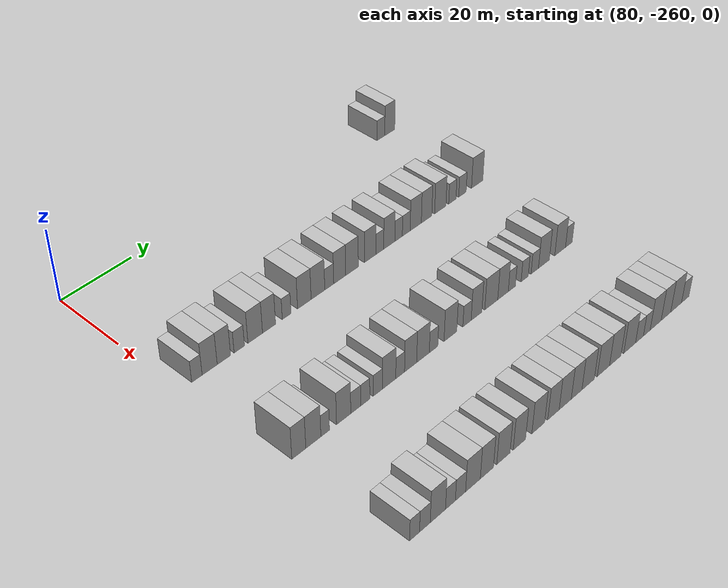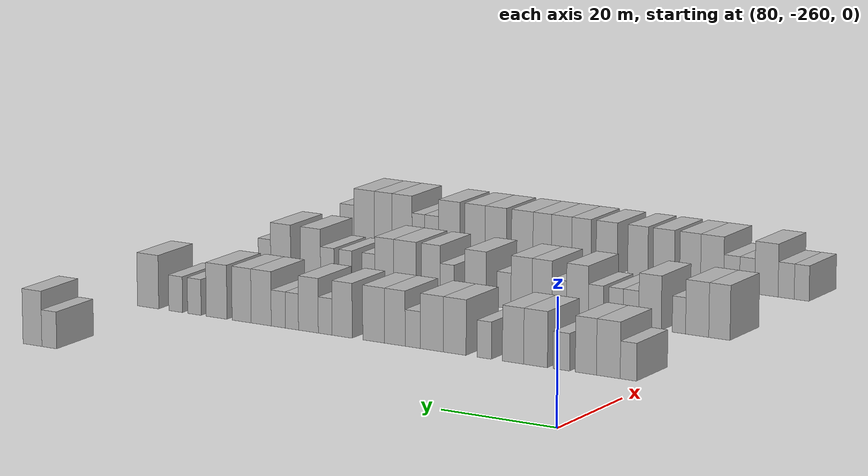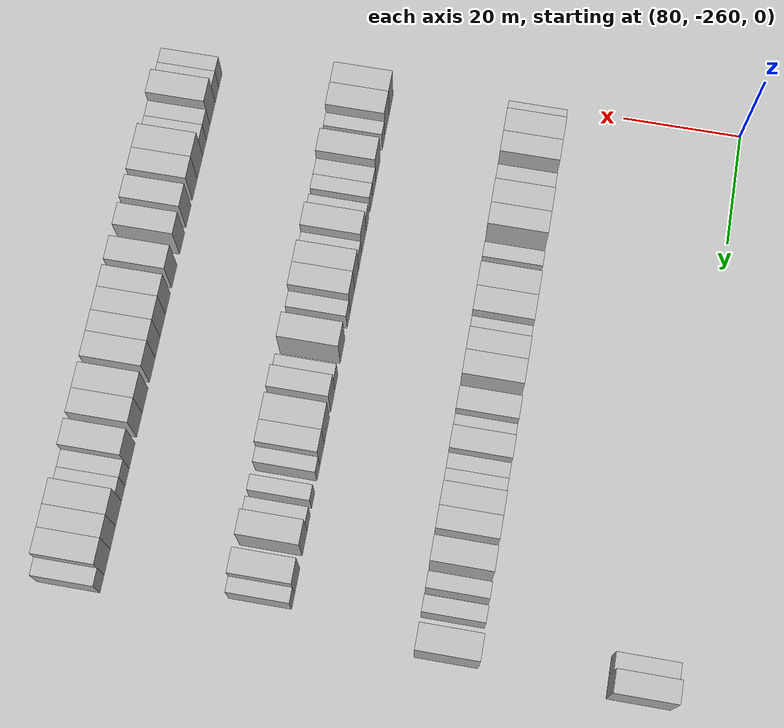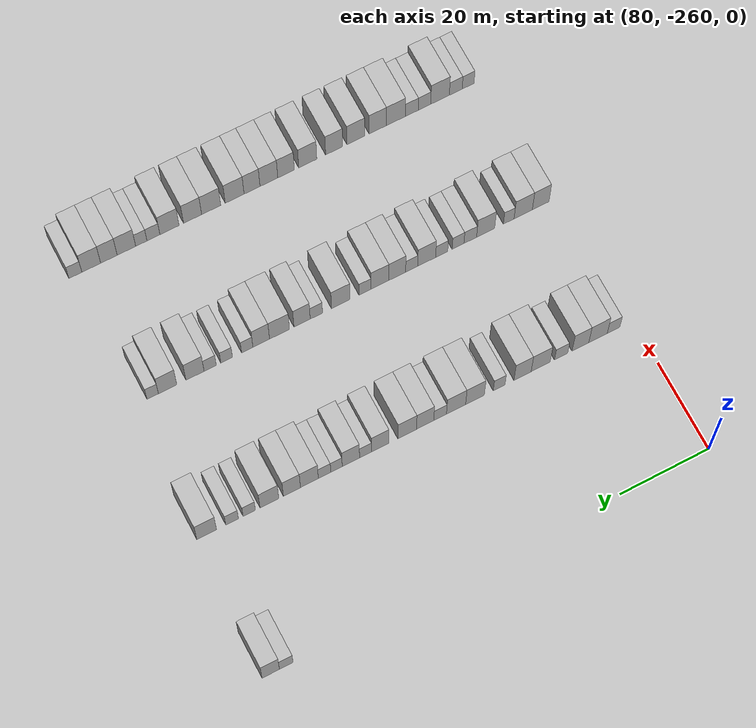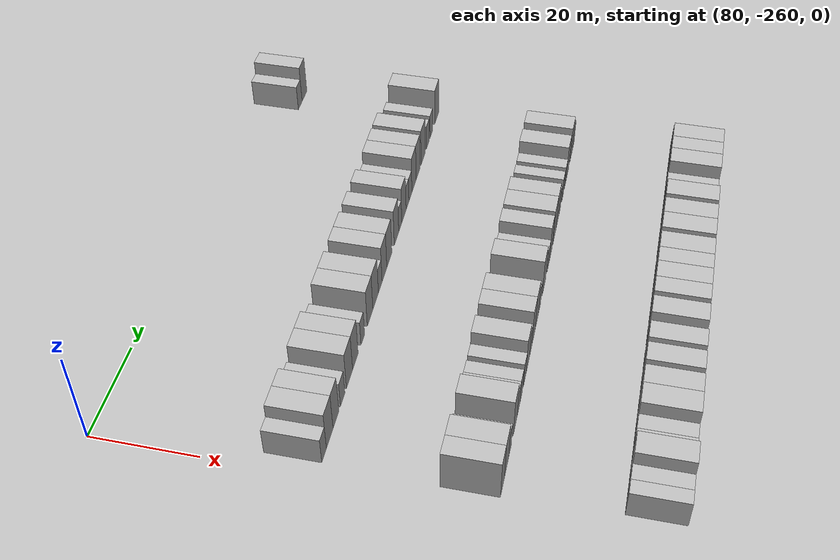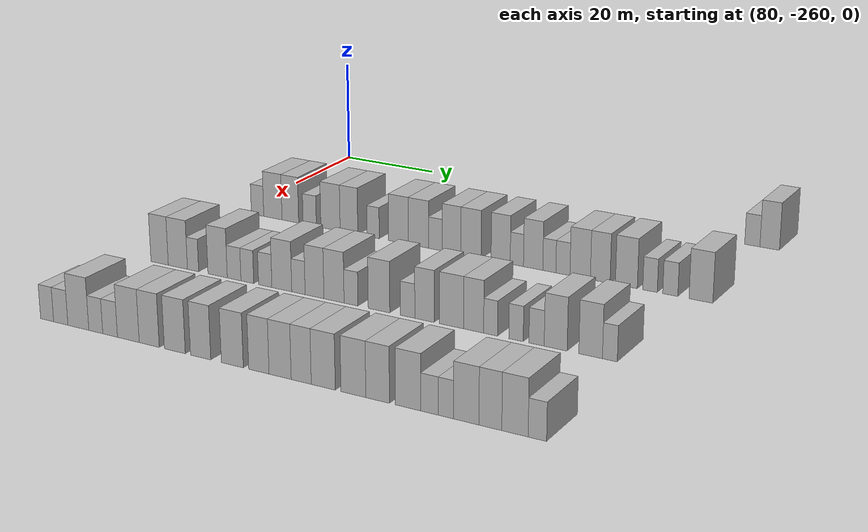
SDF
<sdf version="1.6">
 <world name="default">
  <model name="building_508">
   <static>1</static>
   <pose>85.0000 -167.4077 0 0.000000 0.000000 0.000000</pose>
   <link name="link">
    <pose>0 0 3.00 0 0 0</pose>
    <collision name="collision"><geometry><box><size>10.0000 2.8990 6.0000</size></box></geometry></collision>
    <visual name="visual">
     <cast_shadows>0</cast_shadows>
     <geometry><box><size>10.0000 2.8990 6.0000</size></box></geometry>
     <material>
      <script>
       <uri>model://HANNAS_wall/materials/scripts</uri>
       <uri>model://HANNAS_wall/materials/textures</uri>
       <name>vrc/HANNAS_wall</name>
      </script>
     </material>
    </visual>
   </link>
  </model>
  <model name="building_509">
   <static>1</static>
   <pose>85.0000 -164.1132 0 0.000000 0.000000 0.000000</pose>
   <link name="link">
    <pose>0 0 4.50 0 0 0</pose>
    <collision name="collision"><geometry><box><size>10.0000 3.6900 9.0000</size></box></geometry></collision>
    <visual name="visual">
     <cast_shadows>0</cast_shadows>
     <geometry><box><size>10.0000 3.6900 9.0000</size></box></geometry>
     <material>
      <script>
       <uri>model://HANNAS_wall/materials/scripts</uri>
       <uri>model://HANNAS_wall/materials/textures</uri>
       <name>vrc/HANNAS_wall</name>
      </script>
     </material>
    </visual>
   </link>
  </model>
  <model name="building_720">
   <static>1</static>
   <pose>115.0000 -255.4971 0 0.000000 0.000000 0.000000</pose>
   <link name="link">
    <pose>0 0 3.00 0 0 0</pose>
    <collision name="collision"><geometry><box><size>10.0000 2.8646 6.0000</size></box></geometry></collision>
    <visual name="visual">
     <cast_shadows>0</cast_shadows>
     <geometry><box><size>10.0000 2.8646 6.0000</size></box></geometry>
     <material>
      <script>
       <uri>model://HANNAS_wall/materials/scripts</uri>
       <uri>model://HANNAS_wall/materials/textures</uri>
       <name>vrc/HANNAS_wall</name>
      </script>
     </material>
    </visual>
   </link>
  </model>
  <model name="building_721">
   <static>1</static>
   <pose>115.0000 -251.9720 0 0.000000 0.000000 0.000000</pose>
   <link name="link">
    <pose>0 0 4.50 0 0 0</pose>
    <collision name="collision"><geometry><box><size>10.0000 4.1856 9.0000</size></box></geometry></collision>
    <visual name="visual">
     <cast_shadows>0</cast_shadows>
     <geometry><box><size>10.0000 4.1856 9.0000</size></box></geometry>
     <material>
      <script>
       <uri>model://HANNAS_wall/materials/scripts</uri>
       <uri>model://HANNAS_wall/materials/textures</uri>
       <name>vrc/HANNAS_wall</name>
      </script>
     </material>
    </visual>
   </link>
  </model>
  <model name="building_722">
   <static>1</static>
   <pose>115.0000 -247.9915 0 0.000000 0.000000 0.000000</pose>
   <link name="link">
    <pose>0 0 4.50 0 0 0</pose>
    <collision name="collision"><geometry><box><size>10.0000 3.7753 9.0000</size></box></geometry></collision>
    <visual name="visual">
     <cast_shadows>0</cast_shadows>
     <geometry><box><size>10.0000 3.7753 9.0000</size></box></geometry>
     <material>
      <script>
       <uri>model://HANNAS_wall/materials/scripts</uri>
       <uri>model://HANNAS_wall/materials/textures</uri>
       <name>vrc/HANNAS_wall</name>
      </script>
     </material>
    </visual>
   </link>
  </model>
  <model name="building_723">
   <static>1</static>
   <pose>115.0000 -243.6222 0 0.000000 0.000000 0.000000</pose>
   <link name="link">
    <pose>0 0 3.00 0 0 0</pose>
    <collision name="collision"><geometry><box><size>10.0000 2.9632 6.0000</size></box></geometry></collision>
    <visual name="visual">
     <cast_shadows>0</cast_shadows>
     <geometry><box><size>10.0000 2.9632 6.0000</size></box></geometry>
     <material>
      <script>
       <uri>model://HANNAS_wall/materials/scripts</uri>
       <uri>model://HANNAS_wall/materials/textures</uri>
       <name>vrc/HANNAS_wall</name>
      </script>
     </material>
    </visual>
   </link>
  </model>
  <model name="building_724">
   <static>1</static>
   <pose>115.0000 -239.0097 0 0.000000 0.000000 0.000000</pose>
   <link name="link">
    <pose>0 0 4.50 0 0 0</pose>
    <collision name="collision"><geometry><box><size>10.0000 4.2618 9.0000</size></box></geometry></collision>
    <visual name="visual">
     <cast_shadows>0</cast_shadows>
     <geometry><box><size>10.0000 4.2618 9.0000</size></box></geometry>
     <material>
      <script>
       <uri>model://HANNAS_wall/materials/scripts</uri>
       <uri>model://HANNAS_wall/materials/textures</uri>
       <name>vrc/HANNAS_wall</name>
      </script>
     </material>
    </visual>
   </link>
  </model>
  <model name="building_725">
   <static>1</static>
   <pose>115.0000 -234.9482 0 0.000000 0.000000 0.000000</pose>
   <link name="link">
    <pose>0 0 4.50 0 0 0</pose>
    <collision name="collision"><geometry><box><size>10.0000 3.8612 9.0000</size></box></geometry></collision>
    <visual name="visual">
     <cast_shadows>0</cast_shadows>
     <geometry><box><size>10.0000 3.8612 9.0000</size></box></geometry>
     <material>
      <script>
       <uri>model://HANNAS_wall/materials/scripts</uri>
       <uri>model://HANNAS_wall/materials/textures</uri>
       <name>vrc/HANNAS_wall</name>
      </script>
     </material>
    </visual>
   </link>
  </model>
  <model name="building_726">
   <static>1</static>
   <pose>115.0000 -229.7022 0 0.000000 0.000000 0.000000</pose>
   <link name="link">
    <pose>0 0 3.00 0 0 0</pose>
    <collision name="collision"><geometry><box><size>10.0000 2.6308 6.0000</size></box></geometry></collision>
    <visual name="visual">
     <cast_shadows>0</cast_shadows>
     <geometry><box><size>10.0000 2.6308 6.0000</size></box></geometry>
     <material>
      <script>
       <uri>model://HANNAS_wall/materials/scripts</uri>
       <uri>model://HANNAS_wall/materials/textures</uri>
       <name>vrc/HANNAS_wall</name>
      </script>
     </material>
    </visual>
   </link>
  </model>
  <model name="building_727">
   <static>1</static>
   <pose>115.0000 -224.3018 0 0.000000 0.000000 0.000000</pose>
   <link name="link">
    <pose>0 0 4.50 0 0 0</pose>
    <collision name="collision"><geometry><box><size>10.0000 4.1701 9.0000</size></box></geometry></collision>
    <visual name="visual">
     <cast_shadows>0</cast_shadows>
     <geometry><box><size>10.0000 4.1701 9.0000</size></box></geometry>
     <material>
      <script>
       <uri>model://HANNAS_wall/materials/scripts</uri>
       <uri>model://HANNAS_wall/materials/textures</uri>
       <name>vrc/HANNAS_wall</name>
      </script>
     </material>
    </visual>
   </link>
  </model>
  <model name="building_728">
   <static>1</static>
   <pose>115.0000 -220.0845 0 0.000000 0.000000 0.000000</pose>
   <link name="link">
    <pose>0 0 4.50 0 0 0</pose>
    <collision name="collision"><geometry><box><size>10.0000 4.2645 9.0000</size></box></geometry></collision>
    <visual name="visual">
     <cast_shadows>0</cast_shadows>
     <geometry><box><size>10.0000 4.2645 9.0000</size></box></geometry>
     <material>
      <script>
       <uri>model://HANNAS_wall/materials/scripts</uri>
       <uri>model://HANNAS_wall/materials/textures</uri>
       <name>vrc/HANNAS_wall</name>
      </script>
     </material>
    </visual>
   </link>
  </model>
  <model name="building_729">
   <static>1</static>
   <pose>115.0000 -216.5347 0 0.000000 0.000000 0.000000</pose>
   <link name="link">
    <pose>0 0 3.00 0 0 0</pose>
    <collision name="collision"><geometry><box><size>10.0000 2.8351 6.0000</size></box></geometry></collision>
    <visual name="visual">
     <cast_shadows>0</cast_shadows>
     <geometry><box><size>10.0000 2.8351 6.0000</size></box></geometry>
     <material>
      <script>
       <uri>model://HANNAS_wall/materials/scripts</uri>
       <uri>model://HANNAS_wall/materials/textures</uri>
       <name>vrc/HANNAS_wall</name>
      </script>
     </material>
    </visual>
   </link>
  </model>
  <model name="building_730">
   <static>1</static>
   <pose>115.0000 -213.2038 0 0.000000 0.000000 0.000000</pose>
   <link name="link">
    <pose>0 0 4.50 0 0 0</pose>
    <collision name="collision"><geometry><box><size>10.0000 3.8267 9.0000</size></box></geometry></collision>
    <visual name="visual">
     <cast_shadows>0</cast_shadows>
     <geometry><box><size>10.0000 3.8267 9.0000</size></box></geometry>
     <material>
      <script>
       <uri>model://HANNAS_wall/materials/scripts</uri>
       <uri>model://HANNAS_wall/materials/textures</uri>
       <name>vrc/HANNAS_wall</name>
      </script>
     </material>
    </visual>
   </link>
  </model>
  <model name="building_731">
   <static>1</static>
   <pose>115.0000 -209.2380 0 0.000000 0.000000 0.000000</pose>
   <link name="link">
    <pose>0 0 4.50 0 0 0</pose>
    <collision name="collision"><geometry><box><size>10.0000 4.1050 9.0000</size></box></geometry></collision>
    <visual name="visual">
     <cast_shadows>0</cast_shadows>
     <geometry><box><size>10.0000 4.1050 9.0000</size></box></geometry>
     <material>
      <script>
       <uri>model://HANNAS_wall/materials/scripts</uri>
       <uri>model://HANNAS_wall/materials/textures</uri>
       <name>vrc/HANNAS_wall</name>
      </script>
     </material>
    </visual>
   </link>
  </model>
  <model name="building_732">
   <static>1</static>
   <pose>115.0000 -203.2764 0 0.000000 0.000000 0.000000</pose>
   <link name="link">
    <pose>0 0 4.50 0 0 0</pose>
    <collision name="collision"><geometry><box><size>10.0000 3.8181 9.0000</size></box></geometry></collision>
    <visual name="visual">
     <cast_shadows>0</cast_shadows>
     <geometry><box><size>10.0000 3.8181 9.0000</size></box></geometry>
     <material>
      <script>
       <uri>model://HANNAS_wall/materials/scripts</uri>
       <uri>model://HANNAS_wall/materials/textures</uri>
       <name>vrc/HANNAS_wall</name>
      </script>
     </material>
    </visual>
   </link>
  </model>
  <model name="building_733">
   <static>1</static>
   <pose>115.0000 -200.0589 0 0.000000 0.000000 0.000000</pose>
   <link name="link">
    <pose>0 0 3.00 0 0 0</pose>
    <collision name="collision"><geometry><box><size>10.0000 2.6170 6.0000</size></box></geometry></collision>
    <visual name="visual">
     <cast_shadows>0</cast_shadows>
     <geometry><box><size>10.0000 2.6170 6.0000</size></box></geometry>
     <material>
      <script>
       <uri>model://HANNAS_wall/materials/scripts</uri>
       <uri>model://HANNAS_wall/materials/textures</uri>
       <name>vrc/HANNAS_wall</name>
      </script>
     </material>
    </visual>
   </link>
  </model>
  <model name="building_734">
   <static>1</static>
   <pose>115.0000 -196.8568 0 0.000000 0.000000 0.000000</pose>
   <link name="link">
    <pose>0 0 4.50 0 0 0</pose>
    <collision name="collision"><geometry><box><size>10.0000 3.7873 9.0000</size></box></geometry></collision>
    <visual name="visual">
     <cast_shadows>0</cast_shadows>
     <geometry><box><size>10.0000 3.7873 9.0000</size></box></geometry>
     <material>
      <script>
       <uri>model://HANNAS_wall/materials/scripts</uri>
       <uri>model://HANNAS_wall/materials/textures</uri>
       <name>vrc/HANNAS_wall</name>
      </script>
     </material>
    </visual>
   </link>
  </model>
  <model name="building_735">
   <static>1</static>
   <pose>115.0000 -193.7016 0 0.000000 0.000000 0.000000</pose>
   <link name="link">
    <pose>0 0 3.00 0 0 0</pose>
    <collision name="collision"><geometry><box><size>10.0000 2.5230 6.0000</size></box></geometry></collision>
    <visual name="visual">
     <cast_shadows>0</cast_shadows>
     <geometry><box><size>10.0000 2.5230 6.0000</size></box></geometry>
     <material>
      <script>
       <uri>model://HANNAS_wall/materials/scripts</uri>
       <uri>model://HANNAS_wall/materials/textures</uri>
       <name>vrc/HANNAS_wall</name>
      </script>
     </material>
    </visual>
   </link>
  </model>
  <model name="building_736">
   <static>1</static>
   <pose>115.0000 -191.0798 0 0.000000 0.000000 0.000000</pose>
   <link name="link">
    <pose>0 0 3.00 0 0 0</pose>
    <collision name="collision"><geometry><box><size>10.0000 2.7205 6.0000</size></box></geometry></collision>
    <visual name="visual">
     <cast_shadows>0</cast_shadows>
     <geometry><box><size>10.0000 2.7205 6.0000</size></box></geometry>
     <material>
      <script>
       <uri>model://HANNAS_wall/materials/scripts</uri>
       <uri>model://HANNAS_wall/materials/textures</uri>
       <name>vrc/HANNAS_wall</name>
      </script>
     </material>
    </visual>
   </link>
  </model>
  <model name="building_737">
   <static>1</static>
   <pose>115.0000 -187.7755 0 0.000000 0.000000 0.000000</pose>
   <link name="link">
    <pose>0 0 4.50 0 0 0</pose>
    <collision name="collision"><geometry><box><size>10.0000 3.8881 9.0000</size></box></geometry></collision>
    <visual name="visual">
     <cast_shadows>0</cast_shadows>
     <geometry><box><size>10.0000 3.8881 9.0000</size></box></geometry>
     <material>
      <script>
       <uri>model://HANNAS_wall/materials/scripts</uri>
       <uri>model://HANNAS_wall/materials/textures</uri>
       <name>vrc/HANNAS_wall</name>
      </script>
     </material>
    </visual>
   </link>
  </model>
  <model name="building_738">
   <static>1</static>
   <pose>115.0000 -183.9762 0 0.000000 0.000000 0.000000</pose>
   <link name="link">
    <pose>0 0 4.50 0 0 0</pose>
    <collision name="collision"><geometry><box><size>10.0000 3.7105 9.0000</size></box></geometry></collision>
    <visual name="visual">
     <cast_shadows>0</cast_shadows>
     <geometry><box><size>10.0000 3.7105 9.0000</size></box></geometry>
     <material>
      <script>
       <uri>model://HANNAS_wall/materials/scripts</uri>
       <uri>model://HANNAS_wall/materials/textures</uri>
       <name>vrc/HANNAS_wall</name>
      </script>
     </material>
    </visual>
   </link>
  </model>
  <model name="building_739">
   <static>1</static>
   <pose>115.0000 -179.0841 0 0.000000 0.000000 0.000000</pose>
   <link name="link">
    <pose>0 0 4.50 0 0 0</pose>
    <collision name="collision"><geometry><box><size>10.0000 4.0737 9.0000</size></box></geometry></collision>
    <visual name="visual">
     <cast_shadows>0</cast_shadows>
     <geometry><box><size>10.0000 4.0737 9.0000</size></box></geometry>
     <material>
      <script>
       <uri>model://HANNAS_wall/materials/scripts</uri>
       <uri>model://HANNAS_wall/materials/textures</uri>
       <name>vrc/HANNAS_wall</name>
      </script>
     </material>
    </visual>
   </link>
  </model>
  <model name="building_740">
   <static>1</static>
   <pose>115.0000 -174.7166 0 0.000000 0.000000 0.000000</pose>
   <link name="link">
    <pose>0 0 3.00 0 0 0</pose>
    <collision name="collision"><geometry><box><size>10.0000 2.6613 6.0000</size></box></geometry></collision>
    <visual name="visual">
     <cast_shadows>0</cast_shadows>
     <geometry><box><size>10.0000 2.6613 6.0000</size></box></geometry>
     <material>
      <script>
       <uri>model://HANNAS_wall/materials/scripts</uri>
       <uri>model://HANNAS_wall/materials/textures</uri>
       <name>vrc/HANNAS_wall</name>
      </script>
     </material>
    </visual>
   </link>
  </model>
  <model name="building_741">
   <static>1</static>
   <pose>115.0000 -171.0185 0 0.000000 0.000000 0.000000</pose>
   <link name="link">
    <pose>0 0 3.00 0 0 0</pose>
    <collision name="collision"><geometry><box><size>10.0000 2.7350 6.0000</size></box></geometry></collision>
    <visual name="visual">
     <cast_shadows>0</cast_shadows>
     <geometry><box><size>10.0000 2.7350 6.0000</size></box></geometry>
     <material>
      <script>
       <uri>model://HANNAS_wall/materials/scripts</uri>
       <uri>model://HANNAS_wall/materials/textures</uri>
       <name>vrc/HANNAS_wall</name>
      </script>
     </material>
    </visual>
   </link>
  </model>
  <model name="building_742">
   <static>1</static>
   <pose>115.0000 -165.5283 0 0.000000 0.000000 0.000000</pose>
   <link name="link">
    <pose>0 0 4.50 0 0 0</pose>
    <collision name="collision"><geometry><box><size>10.0000 4.2454 9.0000</size></box></geometry></collision>
    <visual name="visual">
     <cast_shadows>0</cast_shadows>
     <geometry><box><size>10.0000 4.2454 9.0000</size></box></geometry>
     <material>
      <script>
       <uri>model://HANNAS_wall/materials/scripts</uri>
       <uri>model://HANNAS_wall/materials/textures</uri>
       <name>vrc/HANNAS_wall</name>
      </script>
     </material>
    </visual>
   </link>
  </model>
  <model name="building_952">
   <static>1</static>
   <pose>145.0000 -255.5595 0 0.000000 0.000000 0.000000</pose>
   <link name="link">
    <pose>0 0 4.50 0 0 0</pose>
    <collision name="collision"><geometry><box><size>10.0000 3.8281 9.0000</size></box></geometry></collision>
    <visual name="visual">
     <cast_shadows>0</cast_shadows>
     <geometry><box><size>10.0000 3.8281 9.0000</size></box></geometry>
     <material>
      <script>
       <uri>model://HANNAS_wall/materials/scripts</uri>
       <uri>model://HANNAS_wall/materials/textures</uri>
       <name>vrc/HANNAS_wall</name>
      </script>
     </material>
    </visual>
   </link>
  </model>
  <model name="building_953">
   <static>1</static>
   <pose>145.0000 -251.5463 0 0.000000 0.000000 0.000000</pose>
   <link name="link">
    <pose>0 0 4.50 0 0 0</pose>
    <collision name="collision"><geometry><box><size>10.0000 4.1982 9.0000</size></box></geometry></collision>
    <visual name="visual">
     <cast_shadows>0</cast_shadows>
     <geometry><box><size>10.0000 4.1982 9.0000</size></box></geometry>
     <material>
      <script>
       <uri>model://HANNAS_wall/materials/scripts</uri>
       <uri>model://HANNAS_wall/materials/textures</uri>
       <name>vrc/HANNAS_wall</name>
      </script>
     </material>
    </visual>
   </link>
  </model>
  <model name="building_954">
   <static>1</static>
   <pose>145.0000 -248.2325 0 0.000000 0.000000 0.000000</pose>
   <link name="link">
    <pose>0 0 3.00 0 0 0</pose>
    <collision name="collision"><geometry><box><size>10.0000 2.4294 6.0000</size></box></geometry></collision>
    <visual name="visual">
     <cast_shadows>0</cast_shadows>
     <geometry><box><size>10.0000 2.4294 6.0000</size></box></geometry>
     <material>
      <script>
       <uri>model://HANNAS_wall/materials/scripts</uri>
       <uri>model://HANNAS_wall/materials/textures</uri>
       <name>vrc/HANNAS_wall</name>
      </script>
     </material>
    </visual>
   </link>
  </model>
  <model name="building_955">
   <static>1</static>
   <pose>145.0000 -242.9594 0 0.000000 0.000000 0.000000</pose>
   <link name="link">
    <pose>0 0 4.50 0 0 0</pose>
    <collision name="collision"><geometry><box><size>10.0000 4.1167 9.0000</size></box></geometry></collision>
    <visual name="visual">
     <cast_shadows>0</cast_shadows>
     <geometry><box><size>10.0000 4.1167 9.0000</size></box></geometry>
     <material>
      <script>
       <uri>model://HANNAS_wall/materials/scripts</uri>
       <uri>model://HANNAS_wall/materials/textures</uri>
       <name>vrc/HANNAS_wall</name>
      </script>
     </material>
    </visual>
   </link>
  </model>
  <model name="building_956">
   <static>1</static>
   <pose>145.0000 -239.4608 0 0.000000 0.000000 0.000000</pose>
   <link name="link">
    <pose>0 0 3.00 0 0 0</pose>
    <collision name="collision"><geometry><box><size>10.0000 2.8805 6.0000</size></box></geometry></collision>
    <visual name="visual">
     <cast_shadows>0</cast_shadows>
     <geometry><box><size>10.0000 2.8805 6.0000</size></box></geometry>
     <material>
      <script>
       <uri>model://HANNAS_wall/materials/scripts</uri>
       <uri>model://HANNAS_wall/materials/textures</uri>
       <name>vrc/HANNAS_wall</name>
      </script>
     </material>
    </visual>
   </link>
  </model>
  <model name="building_957">
   <static>1</static>
   <pose>145.0000 -236.6794 0 0.000000 0.000000 0.000000</pose>
   <link name="link">
    <pose>0 0 3.00 0 0 0</pose>
    <collision name="collision"><geometry><box><size>10.0000 2.6824 6.0000</size></box></geometry></collision>
    <visual name="visual">
     <cast_shadows>0</cast_shadows>
     <geometry><box><size>10.0000 2.6824 6.0000</size></box></geometry>
     <material>
      <script>
       <uri>model://HANNAS_wall/materials/scripts</uri>
       <uri>model://HANNAS_wall/materials/textures</uri>
       <name>vrc/HANNAS_wall</name>
      </script>
     </material>
    </visual>
   </link>
  </model>
  <model name="building_958">
   <static>1</static>
   <pose>145.0000 -232.9587 0 0.000000 0.000000 0.000000</pose>
   <link name="link">
    <pose>0 0 3.00 0 0 0</pose>
    <collision name="collision"><geometry><box><size>10.0000 2.7591 6.0000</size></box></geometry></collision>
    <visual name="visual">
     <cast_shadows>0</cast_shadows>
     <geometry><box><size>10.0000 2.7591 6.0000</size></box></geometry>
     <material>
      <script>
       <uri>model://HANNAS_wall/materials/scripts</uri>
       <uri>model://HANNAS_wall/materials/textures</uri>
       <name>vrc/HANNAS_wall</name>
      </script>
     </material>
    </visual>
   </link>
  </model>
  <model name="building_959">
   <static>1</static>
   <pose>145.0000 -229.5435 0 0.000000 0.000000 0.000000</pose>
   <link name="link">
    <pose>0 0 4.50 0 0 0</pose>
    <collision name="collision"><geometry><box><size>10.0000 4.0712 9.0000</size></box></geometry></collision>
    <visual name="visual">
     <cast_shadows>0</cast_shadows>
     <geometry><box><size>10.0000 4.0712 9.0000</size></box></geometry>
     <material>
      <script>
       <uri>model://HANNAS_wall/materials/scripts</uri>
       <uri>model://HANNAS_wall/materials/textures</uri>
       <name>vrc/HANNAS_wall</name>
      </script>
     </material>
    </visual>
   </link>
  </model>
  <model name="building_960">
   <static>1</static>
   <pose>145.0000 -226.1524 0 0.000000 0.000000 0.000000</pose>
   <link name="link">
    <pose>0 0 3.00 0 0 0</pose>
    <collision name="collision"><geometry><box><size>10.0000 2.7109 6.0000</size></box></geometry></collision>
    <visual name="visual">
     <cast_shadows>0</cast_shadows>
     <geometry><box><size>10.0000 2.7109 6.0000</size></box></geometry>
     <material>
      <script>
       <uri>model://HANNAS_wall/materials/scripts</uri>
       <uri>model://HANNAS_wall/materials/textures</uri>
       <name>vrc/HANNAS_wall</name>
      </script>
     </material>
    </visual>
   </link>
  </model>
  <model name="building_961">
   <static>1</static>
   <pose>145.0000 -222.9111 0 0.000000 0.000000 0.000000</pose>
   <link name="link">
    <pose>0 0 4.50 0 0 0</pose>
    <collision name="collision"><geometry><box><size>10.0000 3.7718 9.0000</size></box></geometry></collision>
    <visual name="visual">
     <cast_shadows>0</cast_shadows>
     <geometry><box><size>10.0000 3.7718 9.0000</size></box></geometry>
     <material>
      <script>
       <uri>model://HANNAS_wall/materials/scripts</uri>
       <uri>model://HANNAS_wall/materials/textures</uri>
       <name>vrc/HANNAS_wall</name>
      </script>
     </material>
    </visual>
   </link>
  </model>
  <model name="building_962">
   <static>1</static>
   <pose>145.0000 -219.0310 0 0.000000 0.000000 0.000000</pose>
   <link name="link">
    <pose>0 0 4.50 0 0 0</pose>
    <collision name="collision"><geometry><box><size>10.0000 3.9883 9.0000</size></box></geometry></collision>
    <visual name="visual">
     <cast_shadows>0</cast_shadows>
     <geometry><box><size>10.0000 3.9883 9.0000</size></box></geometry>
     <material>
      <script>
       <uri>model://HANNAS_wall/materials/scripts</uri>
       <uri>model://HANNAS_wall/materials/textures</uri>
       <name>vrc/HANNAS_wall</name>
      </script>
     </material>
    </visual>
   </link>
  </model>
  <model name="building_963">
   <static>1</static>
   <pose>145.0000 -215.6750 0 0.000000 0.000000 0.000000</pose>
   <link name="link">
    <pose>0 0 3.00 0 0 0</pose>
    <collision name="collision"><geometry><box><size>10.0000 2.7237 6.0000</size></box></geometry></collision>
    <visual name="visual">
     <cast_shadows>0</cast_shadows>
     <geometry><box><size>10.0000 2.7237 6.0000</size></box></geometry>
     <material>
      <script>
       <uri>model://HANNAS_wall/materials/scripts</uri>
       <uri>model://HANNAS_wall/materials/textures</uri>
       <name>vrc/HANNAS_wall</name>
      </script>
     </material>
    </visual>
   </link>
  </model>
  <model name="building_964">
   <static>1</static>
   <pose>145.0000 -210.2338 0 0.000000 0.000000 0.000000</pose>
   <link name="link">
    <pose>0 0 4.50 0 0 0</pose>
    <collision name="collision"><geometry><box><size>10.0000 4.1587 9.0000</size></box></geometry></collision>
    <visual name="visual">
     <cast_shadows>0</cast_shadows>
     <geometry><box><size>10.0000 4.1587 9.0000</size></box></geometry>
     <material>
      <script>
       <uri>model://HANNAS_wall/materials/scripts</uri>
       <uri>model://HANNAS_wall/materials/textures</uri>
       <name>vrc/HANNAS_wall</name>
      </script>
     </material>
    </visual>
   </link>
  </model>
  <model name="building_965">
   <static>1</static>
   <pose>145.0000 -204.7762 0 0.000000 0.000000 0.000000</pose>
   <link name="link">
    <pose>0 0 3.00 0 0 0</pose>
    <collision name="collision"><geometry><box><size>10.0000 2.7564 6.0000</size></box></geometry></collision>
    <visual name="visual">
     <cast_shadows>0</cast_shadows>
     <geometry><box><size>10.0000 2.7564 6.0000</size></box></geometry>
     <material>
      <script>
       <uri>model://HANNAS_wall/materials/scripts</uri>
       <uri>model://HANNAS_wall/materials/textures</uri>
       <name>vrc/HANNAS_wall</name>
      </script>
     </material>
    </visual>
   </link>
  </model>
  <model name="building_966">
   <static>1</static>
   <pose>145.0000 -201.5920 0 0.000000 0.000000 0.000000</pose>
   <link name="link">
    <pose>0 0 4.50 0 0 0</pose>
    <collision name="collision"><geometry><box><size>10.0000 3.6120 9.0000</size></box></geometry></collision>
    <visual name="visual">
     <cast_shadows>0</cast_shadows>
     <geometry><box><size>10.0000 3.6120 9.0000</size></box></geometry>
     <material>
      <script>
       <uri>model://HANNAS_wall/materials/scripts</uri>
       <uri>model://HANNAS_wall/materials/textures</uri>
       <name>vrc/HANNAS_wall</name>
      </script>
     </material>
    </visual>
   </link>
  </model>
  <model name="building_967">
   <static>1</static>
   <pose>145.0000 -196.5698 0 0.000000 0.000000 0.000000</pose>
   <link name="link">
    <pose>0 0 4.50 0 0 0</pose>
    <collision name="collision"><geometry><box><size>10.0000 4.4324 9.0000</size></box></geometry></collision>
    <visual name="visual">
     <cast_shadows>0</cast_shadows>
     <geometry><box><size>10.0000 4.4324 9.0000</size></box></geometry>
     <material>
      <script>
       <uri>model://HANNAS_wall/materials/scripts</uri>
       <uri>model://HANNAS_wall/materials/textures</uri>
       <name>vrc/HANNAS_wall</name>
      </script>
     </material>
    </visual>
   </link>
  </model>
  <model name="building_968">
   <static>1</static>
   <pose>145.0000 -192.5190 0 0.000000 0.000000 0.000000</pose>
   <link name="link">
    <pose>0 0 4.50 0 0 0</pose>
    <collision name="collision"><geometry><box><size>10.0000 3.6693 9.0000</size></box></geometry></collision>
    <visual name="visual">
     <cast_shadows>0</cast_shadows>
     <geometry><box><size>10.0000 3.6693 9.0000</size></box></geometry>
     <material>
      <script>
       <uri>model://HANNAS_wall/materials/scripts</uri>
       <uri>model://HANNAS_wall/materials/textures</uri>
       <name>vrc/HANNAS_wall</name>
      </script>
     </material>
    </visual>
   </link>
  </model>
  <model name="building_969">
   <static>1</static>
   <pose>145.0000 -189.4252 0 0.000000 0.000000 0.000000</pose>
   <link name="link">
    <pose>0 0 3.00 0 0 0</pose>
    <collision name="collision"><geometry><box><size>10.0000 2.5182 6.0000</size></box></geometry></collision>
    <visual name="visual">
     <cast_shadows>0</cast_shadows>
     <geometry><box><size>10.0000 2.5182 6.0000</size></box></geometry>
     <material>
      <script>
       <uri>model://HANNAS_wall/materials/scripts</uri>
       <uri>model://HANNAS_wall/materials/textures</uri>
       <name>vrc/HANNAS_wall</name>
      </script>
     </material>
    </visual>
   </link>
  </model>
  <model name="building_970">
   <static>1</static>
   <pose>145.0000 -184.8795 0 0.000000 0.000000 0.000000</pose>
   <link name="link">
    <pose>0 0 3.00 0 0 0</pose>
    <collision name="collision"><geometry><box><size>10.0000 2.5732 6.0000</size></box></geometry></collision>
    <visual name="visual">
     <cast_shadows>0</cast_shadows>
     <geometry><box><size>10.0000 2.5732 6.0000</size></box></geometry>
     <material>
      <script>
       <uri>model://HANNAS_wall/materials/scripts</uri>
       <uri>model://HANNAS_wall/materials/textures</uri>
       <name>vrc/HANNAS_wall</name>
      </script>
     </material>
    </visual>
   </link>
  </model>
  <model name="building_971">
   <static>1</static>
   <pose>145.0000 -181.2519 0 0.000000 0.000000 0.000000</pose>
   <link name="link">
    <pose>0 0 3.00 0 0 0</pose>
    <collision name="collision"><geometry><box><size>10.0000 2.6819 6.0000</size></box></geometry></collision>
    <visual name="visual">
     <cast_shadows>0</cast_shadows>
     <geometry><box><size>10.0000 2.6819 6.0000</size></box></geometry>
     <material>
      <script>
       <uri>model://HANNAS_wall/materials/scripts</uri>
       <uri>model://HANNAS_wall/materials/textures</uri>
       <name>vrc/HANNAS_wall</name>
      </script>
     </material>
    </visual>
   </link>
  </model>
  <model name="building_972">
   <static>1</static>
   <pose>145.0000 -177.9156 0 0.000000 0.000000 0.000000</pose>
   <link name="link">
    <pose>0 0 4.50 0 0 0</pose>
    <collision name="collision"><geometry><box><size>10.0000 3.9908 9.0000</size></box></geometry></collision>
    <visual name="visual">
     <cast_shadows>0</cast_shadows>
     <geometry><box><size>10.0000 3.9908 9.0000</size></box></geometry>
     <material>
      <script>
       <uri>model://HANNAS_wall/materials/scripts</uri>
       <uri>model://HANNAS_wall/materials/textures</uri>
       <name>vrc/HANNAS_wall</name>
      </script>
     </material>
    </visual>
   </link>
  </model>
  <model name="building_973">
   <static>1</static>
   <pose>145.0000 -171.9094 0 0.000000 0.000000 0.000000</pose>
   <link name="link">
    <pose>0 0 4.50 0 0 0</pose>
    <collision name="collision"><geometry><box><size>10.0000 4.0217 9.0000</size></box></geometry></collision>
    <visual name="visual">
     <cast_shadows>0</cast_shadows>
     <geometry><box><size>10.0000 4.0217 9.0000</size></box></geometry>
     <material>
      <script>
       <uri>model://HANNAS_wall/materials/scripts</uri>
       <uri>model://HANNAS_wall/materials/textures</uri>
       <name>vrc/HANNAS_wall</name>
      </script>
     </material>
    </visual>
   </link>
  </model>
  <model name="building_974">
   <static>1</static>
   <pose>145.0000 -168.6464 0 0.000000 0.000000 0.000000</pose>
   <link name="link">
    <pose>0 0 3.00 0 0 0</pose>
    <collision name="collision"><geometry><box><size>10.0000 2.5042 6.0000</size></box></geometry></collision>
    <visual name="visual">
     <cast_shadows>0</cast_shadows>
     <geometry><box><size>10.0000 2.5042 6.0000</size></box></geometry>
     <material>
      <script>
       <uri>model://HANNAS_wall/materials/scripts</uri>
       <uri>model://HANNAS_wall/materials/textures</uri>
       <name>vrc/HANNAS_wall</name>
      </script>
     </material>
    </visual>
   </link>
  </model>
  <model name="building_1179">
   <static>1</static>
   <pose>175.0000 -255.1610 0 0.000000 0.000000 0.000000</pose>
   <link name="link">
    <pose>0 0 3.00 0 0 0</pose>
    <collision name="collision"><geometry><box><size>10.0000 2.7477 6.0000</size></box></geometry></collision>
    <visual name="visual">
     <cast_shadows>0</cast_shadows>
     <geometry><box><size>10.0000 2.7477 6.0000</size></box></geometry>
     <material>
      <script>
       <uri>model://HANNAS_wall/materials/scripts</uri>
       <uri>model://HANNAS_wall/materials/textures</uri>
       <name>vrc/HANNAS_wall</name>
      </script>
     </material>
    </visual>
   </link>
  </model>
  <model name="building_1180">
   <static>1</static>
   <pose>175.0000 -252.2917 0 0.000000 0.000000 0.000000</pose>
   <link name="link">
    <pose>0 0 3.00 0 0 0</pose>
    <collision name="collision"><geometry><box><size>10.0000 2.9908 6.0000</size></box></geometry></collision>
    <visual name="visual">
     <cast_shadows>0</cast_shadows>
     <geometry><box><size>10.0000 2.9908 6.0000</size></box></geometry>
     <material>
      <script>
       <uri>model://HANNAS_wall/materials/scripts</uri>
       <uri>model://HANNAS_wall/materials/textures</uri>
       <name>vrc/HANNAS_wall</name>
      </script>
     </material>
    </visual>
   </link>
  </model>
  <model name="building_1181">
   <static>1</static>
   <pose>175.0000 -248.6305 0 0.000000 0.000000 0.000000</pose>
   <link name="link">
    <pose>0 0 4.50 0 0 0</pose>
    <collision name="collision"><geometry><box><size>10.0000 4.3317 9.0000</size></box></geometry></collision>
    <visual name="visual">
     <cast_shadows>0</cast_shadows>
     <geometry><box><size>10.0000 4.3317 9.0000</size></box></geometry>
     <material>
      <script>
       <uri>model://HANNAS_wall/materials/scripts</uri>
       <uri>model://HANNAS_wall/materials/textures</uri>
       <name>vrc/HANNAS_wall</name>
      </script>
     </material>
    </visual>
   </link>
  </model>
  <model name="building_1182">
   <static>1</static>
   <pose>175.0000 -245.0396 0 0.000000 0.000000 0.000000</pose>
   <link name="link">
    <pose>0 0 3.00 0 0 0</pose>
    <collision name="collision"><geometry><box><size>10.0000 2.8501 6.0000</size></box></geometry></collision>
    <visual name="visual">
     <cast_shadows>0</cast_shadows>
     <geometry><box><size>10.0000 2.8501 6.0000</size></box></geometry>
     <material>
      <script>
       <uri>model://HANNAS_wall/materials/scripts</uri>
       <uri>model://HANNAS_wall/materials/textures</uri>
       <name>vrc/HANNAS_wall</name>
      </script>
     </material>
    </visual>
   </link>
  </model>
  <model name="building_1183">
   <static>1</static>
   <pose>175.0000 -242.1235 0 0.000000 0.000000 0.000000</pose>
   <link name="link">
    <pose>0 0 3.00 0 0 0</pose>
    <collision name="collision"><geometry><box><size>10.0000 2.9819 6.0000</size></box></geometry></collision>
    <visual name="visual">
     <cast_shadows>0</cast_shadows>
     <geometry><box><size>10.0000 2.9819 6.0000</size></box></geometry>
     <material>
      <script>
       <uri>model://HANNAS_wall/materials/scripts</uri>
       <uri>model://HANNAS_wall/materials/textures</uri>
       <name>vrc/HANNAS_wall</name>
      </script>
     </material>
    </visual>
   </link>
  </model>
  <model name="building_1184">
   <static>1</static>
   <pose>175.0000 -238.4495 0 0.000000 0.000000 0.000000</pose>
   <link name="link">
    <pose>0 0 4.50 0 0 0</pose>
    <collision name="collision"><geometry><box><size>10.0000 4.3663 9.0000</size></box></geometry></collision>
    <visual name="visual">
     <cast_shadows>0</cast_shadows>
     <geometry><box><size>10.0000 4.3663 9.0000</size></box></geometry>
     <material>
      <script>
       <uri>model://HANNAS_wall/materials/scripts</uri>
       <uri>model://HANNAS_wall/materials/textures</uri>
       <name>vrc/HANNAS_wall</name>
      </script>
     </material>
    </visual>
   </link>
  </model>
  <model name="building_1185">
   <static>1</static>
   <pose>175.0000 -234.2865 0 0.000000 0.000000 0.000000</pose>
   <link name="link">
    <pose>0 0 4.50 0 0 0</pose>
    <collision name="collision"><geometry><box><size>10.0000 3.9597 9.0000</size></box></geometry></collision>
    <visual name="visual">
     <cast_shadows>0</cast_shadows>
     <geometry><box><size>10.0000 3.9597 9.0000</size></box></geometry>
     <material>
      <script>
       <uri>model://HANNAS_wall/materials/scripts</uri>
       <uri>model://HANNAS_wall/materials/textures</uri>
       <name>vrc/HANNAS_wall</name>
      </script>
     </material>
    </visual>
   </link>
  </model>
  <model name="building_1186">
   <static>1</static>
   <pose>175.0000 -229.2683 0 0.000000 0.000000 0.000000</pose>
   <link name="link">
    <pose>0 0 4.50 0 0 0</pose>
    <collision name="collision"><geometry><box><size>10.0000 4.0765 9.0000</size></box></geometry></collision>
    <visual name="visual">
     <cast_shadows>0</cast_shadows>
     <geometry><box><size>10.0000 4.0765 9.0000</size></box></geometry>
     <material>
      <script>
       <uri>model://HANNAS_wall/materials/scripts</uri>
       <uri>model://HANNAS_wall/materials/textures</uri>
       <name>vrc/HANNAS_wall</name>
      </script>
     </material>
    </visual>
   </link>
  </model>
  <model name="building_1187">
   <static>1</static>
   <pose>175.0000 -224.2890 0 0.000000 0.000000 0.000000</pose>
   <link name="link">
    <pose>0 0 4.50 0 0 0</pose>
    <collision name="collision"><geometry><box><size>10.0000 3.8820 9.0000</size></box></geometry></collision>
    <visual name="visual">
     <cast_shadows>0</cast_shadows>
     <geometry><box><size>10.0000 3.8820 9.0000</size></box></geometry>
     <material>
      <script>
       <uri>model://HANNAS_wall/materials/scripts</uri>
       <uri>model://HANNAS_wall/materials/textures</uri>
       <name>vrc/HANNAS_wall</name>
      </script>
     </material>
    </visual>
   </link>
  </model>
  <model name="building_1188">
   <static>1</static>
   <pose>175.0000 -218.2907 0 0.000000 0.000000 0.000000</pose>
   <link name="link">
    <pose>0 0 4.50 0 0 0</pose>
    <collision name="collision"><geometry><box><size>10.0000 4.1146 9.0000</size></box></geometry></collision>
    <visual name="visual">
     <cast_shadows>0</cast_shadows>
     <geometry><box><size>10.0000 4.1146 9.0000</size></box></geometry>
     <material>
      <script>
       <uri>model://HANNAS_wall/materials/scripts</uri>
       <uri>model://HANNAS_wall/materials/textures</uri>
       <name>vrc/HANNAS_wall</name>
      </script>
     </material>
    </visual>
   </link>
  </model>
  <model name="building_1189">
   <static>1</static>
   <pose>175.0000 -213.3574 0 0.000000 0.000000 0.000000</pose>
   <link name="link">
    <pose>0 0 4.50 0 0 0</pose>
    <collision name="collision"><geometry><box><size>10.0000 3.7521 9.0000</size></box></geometry></collision>
    <visual name="visual">
     <cast_shadows>0</cast_shadows>
     <geometry><box><size>10.0000 3.7521 9.0000</size></box></geometry>
     <material>
      <script>
       <uri>model://HANNAS_wall/materials/scripts</uri>
       <uri>model://HANNAS_wall/materials/textures</uri>
       <name>vrc/HANNAS_wall</name>
      </script>
     </material>
    </visual>
   </link>
  </model>
  <model name="building_1190">
   <static>1</static>
   <pose>175.0000 -209.4694 0 0.000000 0.000000 0.000000</pose>
   <link name="link">
    <pose>0 0 4.50 0 0 0</pose>
    <collision name="collision"><geometry><box><size>10.0000 4.0237 9.0000</size></box></geometry></collision>
    <visual name="visual">
     <cast_shadows>0</cast_shadows>
     <geometry><box><size>10.0000 4.0237 9.0000</size></box></geometry>
     <material>
      <script>
       <uri>model://HANNAS_wall/materials/scripts</uri>
       <uri>model://HANNAS_wall/materials/textures</uri>
       <name>vrc/HANNAS_wall</name>
      </script>
     </material>
    </visual>
   </link>
  </model>
  <model name="building_1191">
   <static>1</static>
   <pose>175.0000 -205.6572 0 0.000000 0.000000 0.000000</pose>
   <link name="link">
    <pose>0 0 4.50 0 0 0</pose>
    <collision name="collision"><geometry><box><size>10.0000 3.6006 9.0000</size></box></geometry></collision>
    <visual name="visual">
     <cast_shadows>0</cast_shadows>
     <geometry><box><size>10.0000 3.6006 9.0000</size></box></geometry>
     <material>
      <script>
       <uri>model://HANNAS_wall/materials/scripts</uri>
       <uri>model://HANNAS_wall/materials/textures</uri>
       <name>vrc/HANNAS_wall</name>
      </script>
     </material>
    </visual>
   </link>
  </model>
  <model name="building_1192">
   <static>1</static>
   <pose>175.0000 -201.7318 0 0.000000 0.000000 0.000000</pose>
   <link name="link">
    <pose>0 0 4.50 0 0 0</pose>
    <collision name="collision"><geometry><box><size>10.0000 4.2502 9.0000</size></box></geometry></collision>
    <visual name="visual">
     <cast_shadows>0</cast_shadows>
     <geometry><box><size>10.0000 4.2502 9.0000</size></box></geometry>
     <material>
      <script>
       <uri>model://HANNAS_wall/materials/scripts</uri>
       <uri>model://HANNAS_wall/materials/textures</uri>
       <name>vrc/HANNAS_wall</name>
      </script>
     </material>
    </visual>
   </link>
  </model>
  <model name="building_1193">
   <static>1</static>
   <pose>175.0000 -196.4508 0 0.000000 0.000000 0.000000</pose>
   <link name="link">
    <pose>0 0 4.50 0 0 0</pose>
    <collision name="collision"><geometry><box><size>10.0000 4.3119 9.0000</size></box></geometry></collision>
    <visual name="visual">
     <cast_shadows>0</cast_shadows>
     <geometry><box><size>10.0000 4.3119 9.0000</size></box></geometry>
     <material>
      <script>
       <uri>model://HANNAS_wall/materials/scripts</uri>
       <uri>model://HANNAS_wall/materials/textures</uri>
       <name>vrc/HANNAS_wall</name>
      </script>
     </material>
    </visual>
   </link>
  </model>
  <model name="building_1194">
   <static>1</static>
   <pose>175.0000 -192.2657 0 0.000000 0.000000 0.000000</pose>
   <link name="link">
    <pose>0 0 4.50 0 0 0</pose>
    <collision name="collision"><geometry><box><size>10.0000 4.0582 9.0000</size></box></geometry></collision>
    <visual name="visual">
     <cast_shadows>0</cast_shadows>
     <geometry><box><size>10.0000 4.0582 9.0000</size></box></geometry>
     <material>
      <script>
       <uri>model://HANNAS_wall/materials/scripts</uri>
       <uri>model://HANNAS_wall/materials/textures</uri>
       <name>vrc/HANNAS_wall</name>
      </script>
     </material>
    </visual>
   </link>
  </model>
  <model name="building_1195">
   <static>1</static>
   <pose>175.0000 -187.0953 0 0.000000 0.000000 0.000000</pose>
   <link name="link">
    <pose>0 0 4.50 0 0 0</pose>
    <collision name="collision"><geometry><box><size>10.0000 4.2825 9.0000</size></box></geometry></collision>
    <visual name="visual">
     <cast_shadows>0</cast_shadows>
     <geometry><box><size>10.0000 4.2825 9.0000</size></box></geometry>
     <material>
      <script>
       <uri>model://HANNAS_wall/materials/scripts</uri>
       <uri>model://HANNAS_wall/materials/textures</uri>
       <name>vrc/HANNAS_wall</name>
      </script>
     </material>
    </visual>
   </link>
  </model>
  <model name="building_1196">
   <static>1</static>
   <pose>175.0000 -183.5144 0 0.000000 0.000000 0.000000</pose>
   <link name="link">
    <pose>0 0 3.00 0 0 0</pose>
    <collision name="collision"><geometry><box><size>10.0000 2.8792 6.0000</size></box></geometry></collision>
    <visual name="visual">
     <cast_shadows>0</cast_shadows>
     <geometry><box><size>10.0000 2.8792 6.0000</size></box></geometry>
     <material>
      <script>
       <uri>model://HANNAS_wall/materials/scripts</uri>
       <uri>model://HANNAS_wall/materials/textures</uri>
       <name>vrc/HANNAS_wall</name>
      </script>
     </material>
    </visual>
   </link>
  </model>
  <model name="building_1197">
   <static>1</static>
   <pose>175.0000 -180.8190 0 0.000000 0.000000 0.000000</pose>
   <link name="link">
    <pose>0 0 3.00 0 0 0</pose>
    <collision name="collision"><geometry><box><size>10.0000 2.5118 6.0000</size></box></geometry></collision>
    <visual name="visual">
     <cast_shadows>0</cast_shadows>
     <geometry><box><size>10.0000 2.5118 6.0000</size></box></geometry>
     <material>
      <script>
       <uri>model://HANNAS_wall/materials/scripts</uri>
       <uri>model://HANNAS_wall/materials/textures</uri>
       <name>vrc/HANNAS_wall</name>
      </script>
     </material>
    </visual>
   </link>
  </model>
  <model name="building_1198">
   <static>1</static>
   <pose>175.0000 -177.5009 0 0.000000 0.000000 0.000000</pose>
   <link name="link">
    <pose>0 0 4.50 0 0 0</pose>
    <collision name="collision"><geometry><box><size>10.0000 4.1243 9.0000</size></box></geometry></collision>
    <visual name="visual">
     <cast_shadows>0</cast_shadows>
     <geometry><box><size>10.0000 4.1243 9.0000</size></box></geometry>
     <material>
      <script>
       <uri>model://HANNAS_wall/materials/scripts</uri>
       <uri>model://HANNAS_wall/materials/textures</uri>
       <name>vrc/HANNAS_wall</name>
      </script>
     </material>
    </visual>
   </link>
  </model>
  <model name="building_1199">
   <static>1</static>
   <pose>175.0000 -173.6134 0 0.000000 0.000000 0.000000</pose>
   <link name="link">
    <pose>0 0 4.50 0 0 0</pose>
    <collision name="collision"><geometry><box><size>10.0000 3.6507 9.0000</size></box></geometry></collision>
    <visual name="visual">
     <cast_shadows>0</cast_shadows>
     <geometry><box><size>10.0000 3.6507 9.0000</size></box></geometry>
     <material>
      <script>
       <uri>model://HANNAS_wall/materials/scripts</uri>
       <uri>model://HANNAS_wall/materials/textures</uri>
       <name>vrc/HANNAS_wall</name>
      </script>
     </material>
    </visual>
   </link>
  </model>
  <model name="building_1200">
   <static>1</static>
   <pose>175.0000 -169.7086 0 0.000000 0.000000 0.000000</pose>
   <link name="link">
    <pose>0 0 4.50 0 0 0</pose>
    <collision name="collision"><geometry><box><size>10.0000 4.1590 9.0000</size></box></geometry></collision>
    <visual name="visual">
     <cast_shadows>0</cast_shadows>
     <geometry><box><size>10.0000 4.1590 9.0000</size></box></geometry>
     <material>
      <script>
       <uri>model://HANNAS_wall/materials/scripts</uri>
       <uri>model://HANNAS_wall/materials/textures</uri>
       <name>vrc/HANNAS_wall</name>
      </script>
     </material>
    </visual>
   </link>
  </model>
  <model name="building_1201">
   <static>1</static>
   <pose>175.0000 -166.1916 0 0.000000 0.000000 0.000000</pose>
   <link name="link">
    <pose>0 0 3.00 0 0 0</pose>
    <collision name="collision"><geometry><box><size>10.0000 2.8750 6.0000</size></box></geometry></collision>
    <visual name="visual">
     <cast_shadows>0</cast_shadows>
     <geometry><box><size>10.0000 2.8750 6.0000</size></box></geometry>
     <material>
      <script>
       <uri>model://HANNAS_wall/materials/scripts</uri>
       <uri>model://HANNAS_wall/materials/textures</uri>
       <name>vrc/HANNAS_wall</name>
      </script>
     </material>
    </visual>
   </link>
  </model>
 </world>
</sdf>
